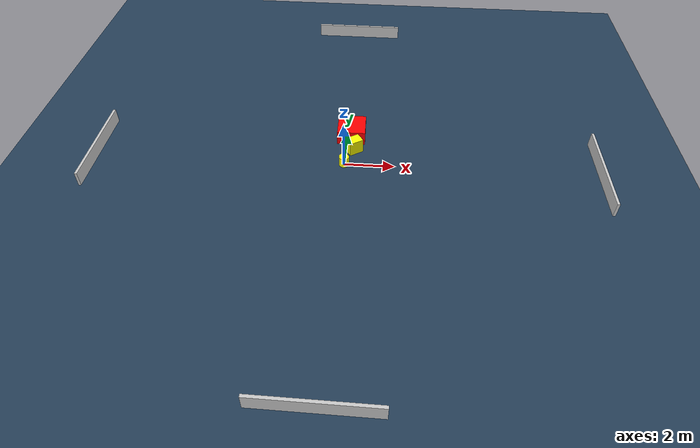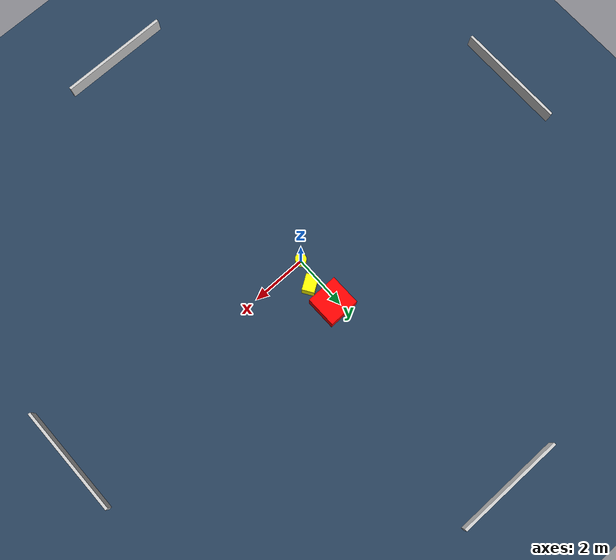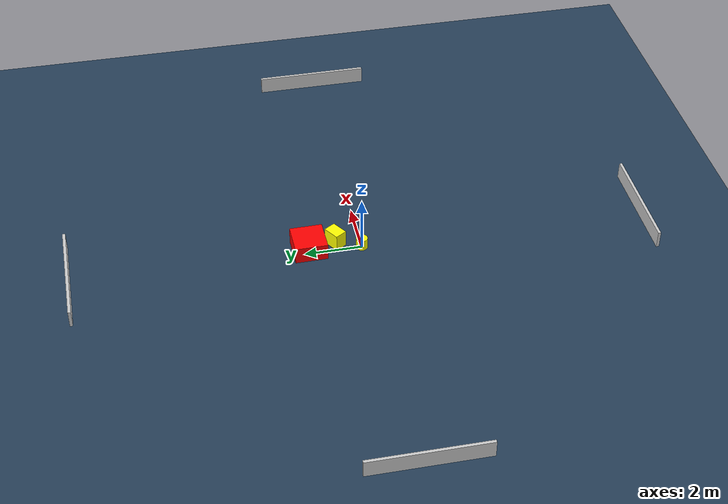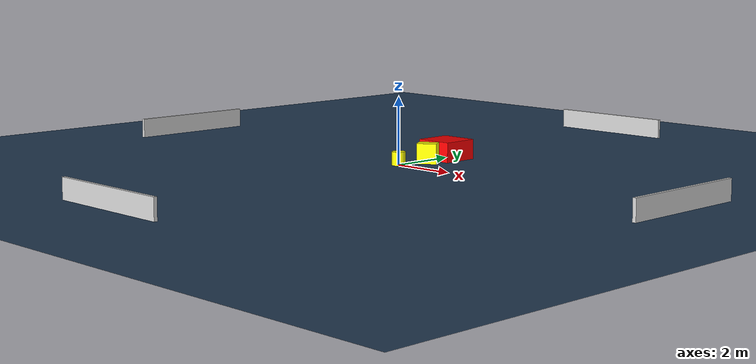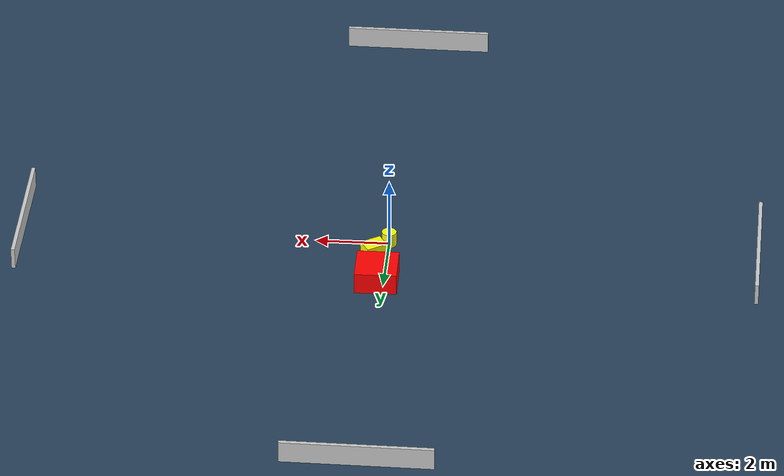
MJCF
<?xml version="1.0" ?>
<mujoco model="generated_environment">
  <option timestep="0.01" integrator="RK4" cone="elliptic"/>
  <default>
    <geom density="1"/>
  </default>
  <asset>
    <texture builtin="gradient" height="3072" name="skybox" rgb1="0.3 0.5 0.7" rgb2="0 0 0" type="skybox" width="512"/>
    <texture builtin="checker" height="300" name="groundplane" rgb1="0.2 0.3 0.4" rgb2="0.1 0.2 0.3" type="2d" width="300"/>
    <material name="groundplane" reflectance="0.2" texrepeat="5 5" texture="groundplane"/>
  </asset>
  <worldbody>
    <light dir="0 0 -1" directional="true" pos="0 0 1.5"/>
    <geom condim="3" friction="0.5 0.005 0.001" material="groundplane" name="floor" pos="0 0 0" size="0 0 0.05" type="plane"/>
    <body name="walls">
      <geom name="wall_1" condim="4" pos="-10.0 0.0 0.3" rgba="0.800000011920929 0.800000011920929 0.800000011920929 1.0" size="0.05 2.0 0.3" type="box"/>
      <geom name="wall_2" condim="4" pos="10.0 0.0 0.3" rgba="0.800000011920929 0.800000011920929 0.800000011920929 1.0" size="0.05 2.0 0.3" type="box"/>
      <geom name="wall_3" condim="4" pos="0.0 -10.0 0.3" rgba="0.800000011920929 0.800000011920929 0.800000011920929 1.0" size="2.0 0.05 0.3" type="box"/>
      <geom name="wall_4" condim="4" pos="0.0 10.0 0.3" rgba="0.800000011920929 0.800000011920929 0.800000011920929 1.0" size="2.0 0.05 0.3" type="box"/>
    </body>
    <body name="robot">
      <joint name="joint_x" type="slide" pos="0 0 0" axis="1 0 0"/>
      <joint name="joint_y" type="slide" pos="0 0 0" axis="0 1 0"/>
      <geom name="robot" type="cylinder" pos="0.0 0.0 0.2" size="0.2 0.2 0.0" mass="5.0" friction="1.0 0.005 0.0001" condim="4" rgba="1.0 1.0 0.0 1.0"/>
    </body>
    <body name="obstacle_1_movable">
      <geom name="obstacle_1_movable" condim="4" pos="0.3459139681089175 0.8599050176780879 0.3" euler="0 0 32.75377443912605" friction="0.0 0.005 0.001" rgba="1.0 1.0 0.0 1.0" size="0.29594591238003487 0.21760584738029118 0.3" type="box" mass="0.1"/>
      <joint type="free"/>
    </body>
    <body name="obstacle_2_static">
      <geom name="obstacle_2_static" condim="4" pos="0.1836596072950126 1.816268577446545 0.3" euler="0 0 90.86599829106892" friction="0.0 0.005 0.001" rgba="1.0 0.0 0.0 1.0" size="0.564635499433197 0.5683573349831252 0.3" type="box"/>
    </body>
  </worldbody>
  <actuator>
    <motor name="actuator_x" joint="joint_x" gear="1" ctrlrange="-1 1"/>
    <motor name="actuator_y" joint="joint_y" gear="1" ctrlrange="-1 1"/>
  </actuator>
</mujoco>
